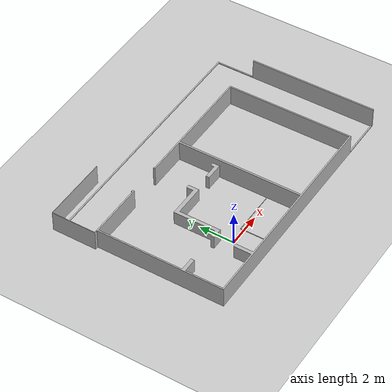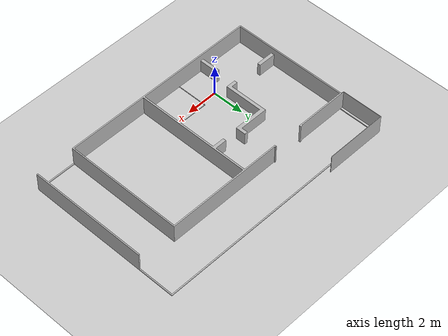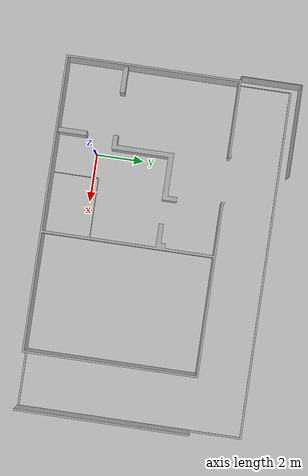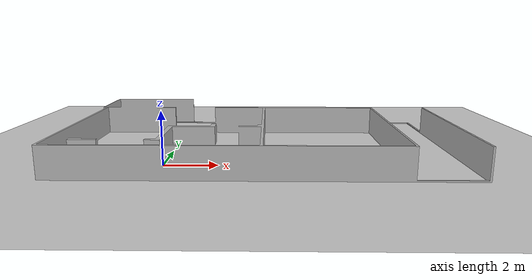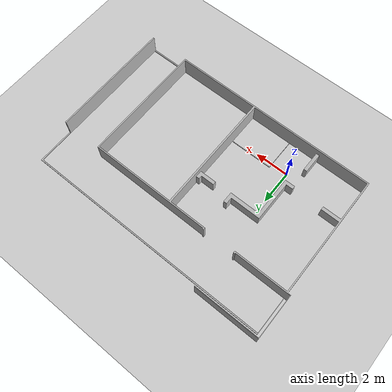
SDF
<?xml version="1.0"?>
<sdf version="1.6">
  <world name="robotics_testlabs_empty">
    <light name="sun" type="directional">
      <direction>0.5 0.1 -0.9</direction>
      <pose>0 0 10 0 0 0</pose>
      <specular>0.2 0.2 0.2 1</specular>
      <cast_shadows>true</cast_shadows>
      <diffuse>0.8 0.8 0.8 1</diffuse>
      <attenuation>
        <range>1000</range>
        <quadratic>0.001</quadratic>
        <constant>0.9</constant>
        <linear>0.01</linear>
      </attenuation>
    </light>
    <model name="initial_pose" type="waypoint">
      <pose>0.586 4.259 0 0 0 0</pose>
      <static>true</static>
    </model>
    <model name="exit" type="waypoint">
      <pose>-1.48 -0.031 0 0 0 3.1415</pose>
      <static>true</static>
    </model>
    <model name="operator_pose" type="waypoint">
      <pose>0.0 0.0 0 0 0 0.0</pose>
      <static>true</static>
    </model>
    <model name="explore1" type="waypoint">
      <pose>2.0 4.0 0 0 0 0.0</pose>
      <static>true</static>
    </model>
    <model name="explore2" type="waypoint">
      <pose>2.0 2.5 0 0 0 0.0</pose>
      <static>true</static>
    </model>
    <model name="explore3" type="waypoint">
      <pose>2.0 2.0 0 0 0 3.14</pose>
      <static>true</static>
    </model>
    <model name="explore4" type="waypoint">
      <pose>2.0 1.5 0 0 0 0.0</pose>
      <static>true</static>
    </model>
    <model name="explore5" type="waypoint">
      <pose>1.0 0.3 0 0 0 0.0</pose>
      <static>true</static>
    </model>
    <model name="explore6" type="waypoint">
      <pose>1.5 -0.5 0 0 0 -1.57</pose>
      <static>true</static>
    </model>
    <model name="explore7" type="waypoint">
      <pose>-1.5 0.0 0 0 0 3.14</pose>
      <static>true</static>
    </model>
    <model name="explore8" type="waypoint">
      <pose>-1.5 2.0 0 0 0 2.36</pose>
      <static>true</static>
    </model>
    <model name="explore9" type="waypoint">
      <pose>-0.5 4.0 0 0 0 3.14</pose>
      <static>true</static>
    </model>
    <model name="explore10" type="waypoint">
      <pose>0.5 4.5 0 0 0 -1.57</pose>
      <static>true</static>
    </model>
    <include>
      <pose>0 0 0 0 0 0</pose>
      <name>walls</name>
      <uri>model://robotics_testlabs/walls</uri>
    </include>
    <include>
      <pose>0 0 0 0 0 0</pose>
      <name>floor</name>
      <uri>model://ground_plane</uri>
    </include>
    <physics type="ode">
      <real_time_update_rate>333.0</real_time_update_rate>
      <max_step_size>0.003</max_step_size>
      <ode>
        <constraints>
          <cfm>0.0001</cfm>
        </constraints>
        <solver>
          <type>quick</type>
          <iters>100</iters>
        </solver>
      </ode>
    </physics>
  </world>
</sdf>

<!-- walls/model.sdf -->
<sdf version="1.6">
  <model name="robotics_testlabs/walls">
    <link name="1_link">
      <collision name="1_col">
        <geometry>
          <mesh>
            <uri>model://robotics_testlabs/walls/shape/heightmap.stl</uri>
          </mesh>
        </geometry>
      </collision>
      <visual name="1_vis">
        <geometry>
          <mesh>
            <uri>model://robotics_testlabs/walls/shape/heightmap.stl</uri>
          </mesh>
        </geometry>
      </visual>
      <pose>0 0 0 0 0 0</pose>
    </link>
    <static>true</static>
  </model>
</sdf>
